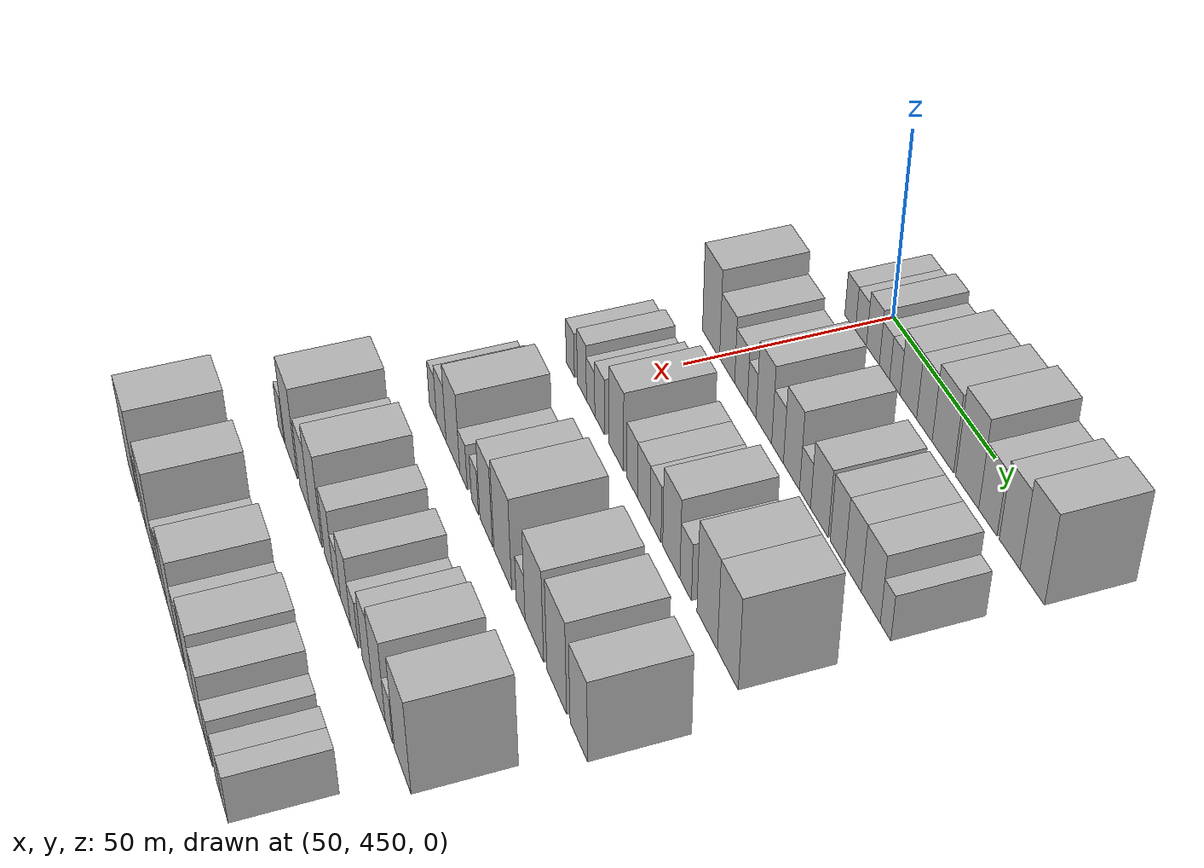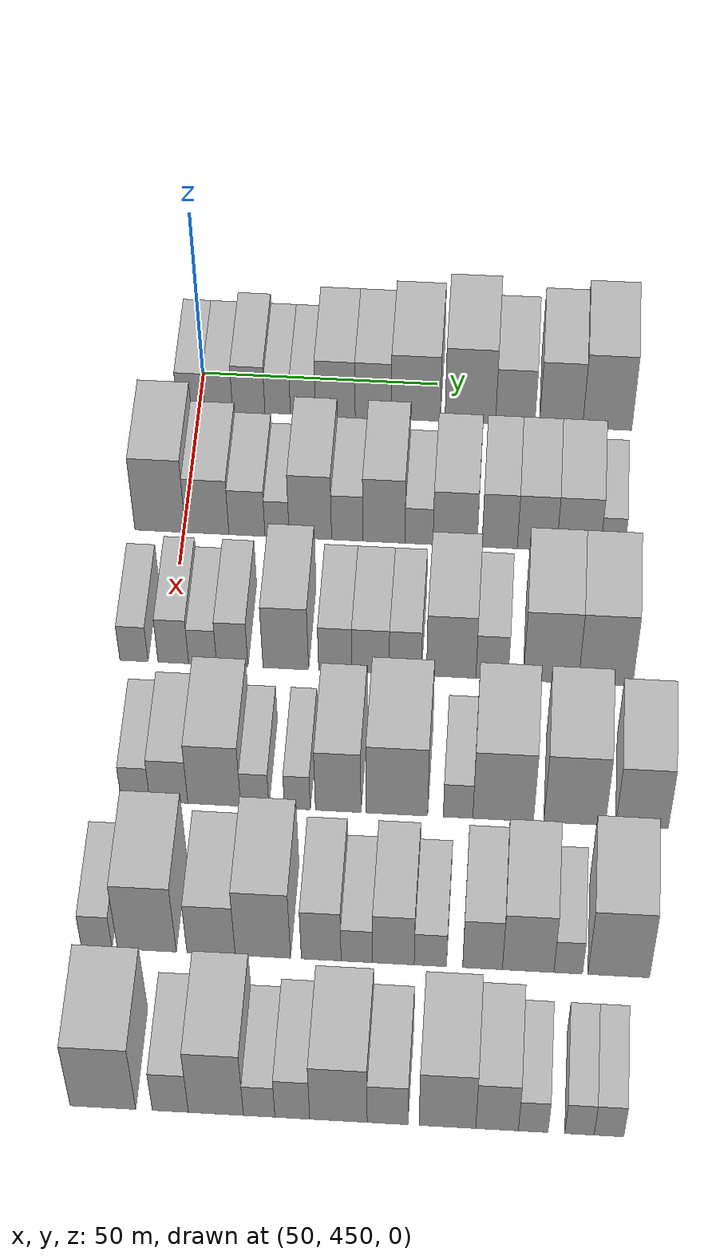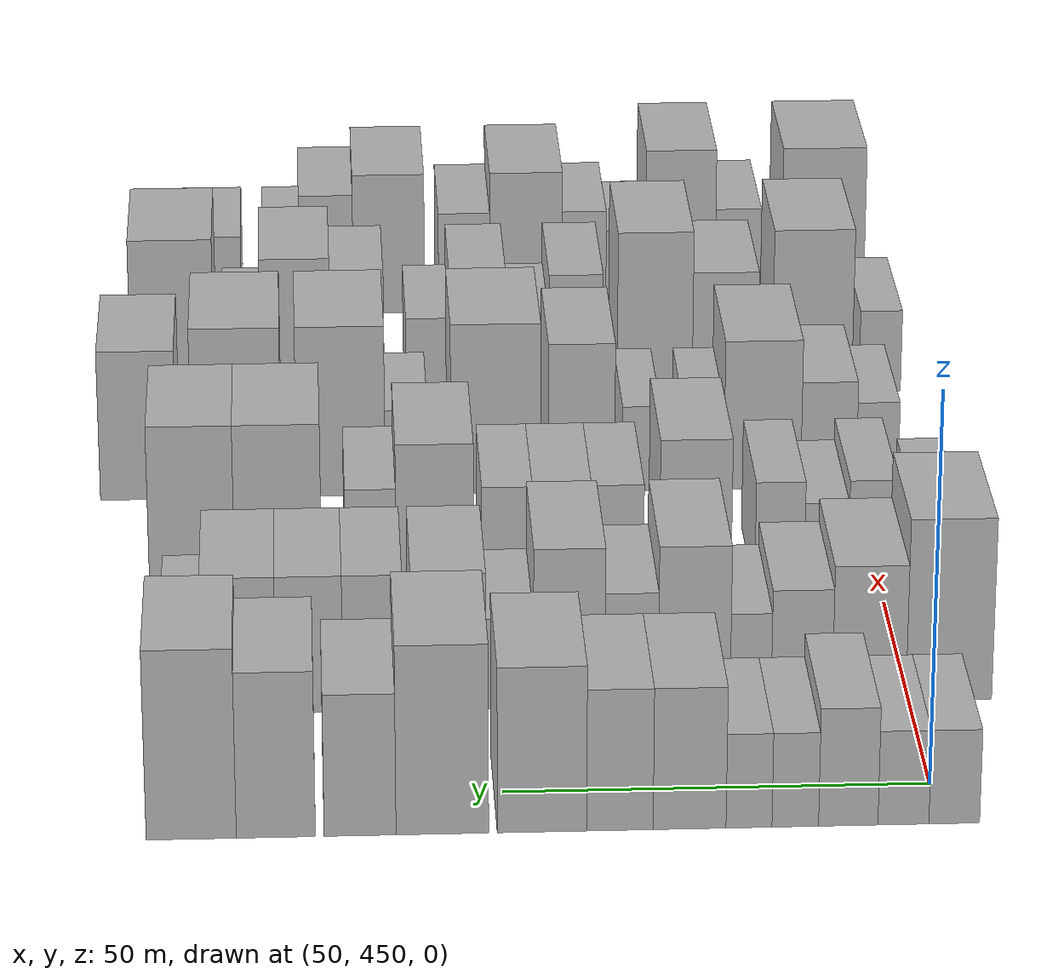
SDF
<sdf version="1.6">
 <world name="default">
  <model name="building_101">
   <static>1</static>
   <pose>50.0000 448.3717 0 0.000000 0.000000 0.000000</pose>
   <link name="link">
    <pose>0 0 6.00 0 0 0</pose>
    <collision name="collision"><geometry><box><size>20.0000 5.8646 12.0000</size></box></geometry></collision>
    <visual name="visual">
     <cast_shadows>0</cast_shadows>
     <geometry><box><size>20.0000 5.8646 12.0000</size></box></geometry>
     <material>
      <script>
       <uri>model://HANNAS_wall/materials/scripts</uri>
       <uri>model://HANNAS_wall/materials/textures</uri>
       <name>vrc/HANNAS_wall</name>
      </script>
     </material>
    </visual>
   </link>
  </model>
  <model name="building_102">
   <static>1</static>
   <pose>50.0000 454.2539 0 0.000000 0.000000 0.000000</pose>
   <link name="link">
    <pose>0 0 6.00 0 0 0</pose>
    <collision name="collision"><geometry><box><size>20.0000 5.8998 12.0000</size></box></geometry></collision>
    <visual name="visual">
     <cast_shadows>0</cast_shadows>
     <geometry><box><size>20.0000 5.8998 12.0000</size></box></geometry>
     <material>
      <script>
       <uri>model://HANNAS_wall/materials/scripts</uri>
       <uri>model://HANNAS_wall/materials/textures</uri>
       <name>vrc/HANNAS_wall</name>
      </script>
     </material>
    </visual>
   </link>
  </model>
  <model name="building_103">
   <static>1</static>
   <pose>50.0000 460.6329 0 0.000000 0.000000 0.000000</pose>
   <link name="link">
    <pose>0 0 7.50 0 0 0</pose>
    <collision name="collision"><geometry><box><size>20.0000 6.8581 15.0000</size></box></geometry></collision>
    <visual name="visual">
     <cast_shadows>0</cast_shadows>
     <geometry><box><size>20.0000 6.8581 15.0000</size></box></geometry>
     <material>
      <script>
       <uri>model://HANNAS_wall/materials/scripts</uri>
       <uri>model://HANNAS_wall/materials/textures</uri>
       <name>vrc/HANNAS_wall</name>
      </script>
     </material>
    </visual>
   </link>
  </model>
  <model name="building_104">
   <static>1</static>
   <pose>50.0000 466.7517 0 0.000000 0.000000 0.000000</pose>
   <link name="link">
    <pose>0 0 6.00 0 0 0</pose>
    <collision name="collision"><geometry><box><size>20.0000 5.3796 12.0000</size></box></geometry></collision>
    <visual name="visual">
     <cast_shadows>0</cast_shadows>
     <geometry><box><size>20.0000 5.3796 12.0000</size></box></geometry>
     <material>
      <script>
       <uri>model://HANNAS_wall/materials/scripts</uri>
       <uri>model://HANNAS_wall/materials/textures</uri>
       <name>vrc/HANNAS_wall</name>
      </script>
     </material>
    </visual>
   </link>
  </model>
  <model name="building_105">
   <static>1</static>
   <pose>50.0000 472.0924 0 0.000000 0.000000 0.000000</pose>
   <link name="link">
    <pose>0 0 6.00 0 0 0</pose>
    <collision name="collision"><geometry><box><size>20.0000 5.3016 12.0000</size></box></geometry></collision>
    <visual name="visual">
     <cast_shadows>0</cast_shadows>
     <geometry><box><size>20.0000 5.3016 12.0000</size></box></geometry>
     <material>
      <script>
       <uri>model://HANNAS_wall/materials/scripts</uri>
       <uri>model://HANNAS_wall/materials/textures</uri>
       <name>vrc/HANNAS_wall</name>
      </script>
     </material>
    </visual>
   </link>
  </model>
  <model name="building_106">
   <static>1</static>
   <pose>50.0000 478.9420 0 0.000000 0.000000 0.000000</pose>
   <link name="link">
    <pose>0 0 9.00 0 0 0</pose>
    <collision name="collision"><geometry><box><size>20.0000 8.3976 18.0000</size></box></geometry></collision>
    <visual name="visual">
     <cast_shadows>0</cast_shadows>
     <geometry><box><size>20.0000 8.3976 18.0000</size></box></geometry>
     <material>
      <script>
       <uri>model://HANNAS_wall/materials/scripts</uri>
       <uri>model://HANNAS_wall/materials/textures</uri>
       <name>vrc/HANNAS_wall</name>
      </script>
     </material>
    </visual>
   </link>
  </model>
  <model name="building_107">
   <static>1</static>
   <pose>50.0000 486.9689 0 0.000000 0.000000 0.000000</pose>
   <link name="link">
    <pose>0 0 9.00 0 0 0</pose>
    <collision name="collision"><geometry><box><size>20.0000 7.6563 18.0000</size></box></geometry></collision>
    <visual name="visual">
     <cast_shadows>0</cast_shadows>
     <geometry><box><size>20.0000 7.6563 18.0000</size></box></geometry>
     <material>
      <script>
       <uri>model://HANNAS_wall/materials/scripts</uri>
       <uri>model://HANNAS_wall/materials/textures</uri>
       <name>vrc/HANNAS_wall</name>
      </script>
     </material>
    </visual>
   </link>
  </model>
  <model name="building_108">
   <static>1</static>
   <pose>50.0000 495.9310 0 0.000000 0.000000 0.000000</pose>
   <link name="link">
    <pose>0 0 10.50 0 0 0</pose>
    <collision name="collision"><geometry><box><size>20.0000 10.2678 21.0000</size></box></geometry></collision>
    <visual name="visual">
     <cast_shadows>0</cast_shadows>
     <geometry><box><size>20.0000 10.2678 21.0000</size></box></geometry>
     <material>
      <script>
       <uri>model://HANNAS_wall/materials/scripts</uri>
       <uri>model://HANNAS_wall/materials/textures</uri>
       <name>vrc/HANNAS_wall</name>
      </script>
     </material>
    </visual>
   </link>
  </model>
  <model name="building_109">
   <static>1</static>
   <pose>50.0000 507.3817 0 0.000000 0.000000 0.000000</pose>
   <link name="link">
    <pose>0 0 12.00 0 0 0</pose>
    <collision name="collision"><geometry><box><size>20.0000 10.6337 24.0000</size></box></geometry></collision>
    <visual name="visual">
     <cast_shadows>0</cast_shadows>
     <geometry><box><size>20.0000 10.6337 24.0000</size></box></geometry>
     <material>
      <script>
       <uri>model://HANNAS_wall/materials/scripts</uri>
       <uri>model://HANNAS_wall/materials/textures</uri>
       <name>vrc/HANNAS_wall</name>
      </script>
     </material>
    </visual>
   </link>
  </model>
  <model name="building_110">
   <static>1</static>
   <pose>50.0000 516.8210 0 0.000000 0.000000 0.000000</pose>
   <link name="link">
    <pose>0 0 9.00 0 0 0</pose>
    <collision name="collision"><geometry><box><size>20.0000 8.2450 18.0000</size></box></geometry></collision>
    <visual name="visual">
     <cast_shadows>0</cast_shadows>
     <geometry><box><size>20.0000 8.2450 18.0000</size></box></geometry>
     <material>
      <script>
       <uri>model://HANNAS_wall/materials/scripts</uri>
       <uri>model://HANNAS_wall/materials/textures</uri>
       <name>vrc/HANNAS_wall</name>
      </script>
     </material>
    </visual>
   </link>
  </model>
  <model name="building_111">
   <static>1</static>
   <pose>50.0000 526.4741 0 0.000000 0.000000 0.000000</pose>
   <link name="link">
    <pose>0 0 10.50 0 0 0</pose>
    <collision name="collision"><geometry><box><size>20.0000 9.0612 21.0000</size></box></geometry></collision>
    <visual name="visual">
     <cast_shadows>0</cast_shadows>
     <geometry><box><size>20.0000 9.0612 21.0000</size></box></geometry>
     <material>
      <script>
       <uri>model://HANNAS_wall/materials/scripts</uri>
       <uri>model://HANNAS_wall/materials/textures</uri>
       <name>vrc/HANNAS_wall</name>
      </script>
     </material>
    </visual>
   </link>
  </model>
  <model name="building_112">
   <static>1</static>
   <pose>50.0000 536.1601 0 0.000000 0.000000 0.000000</pose>
   <link name="link">
    <pose>0 0 12.00 0 0 0</pose>
    <collision name="collision"><geometry><box><size>20.0000 10.3108 24.0000</size></box></geometry></collision>
    <visual name="visual">
     <cast_shadows>0</cast_shadows>
     <geometry><box><size>20.0000 10.3108 24.0000</size></box></geometry>
     <material>
      <script>
       <uri>model://HANNAS_wall/materials/scripts</uri>
       <uri>model://HANNAS_wall/materials/textures</uri>
       <name>vrc/HANNAS_wall</name>
      </script>
     </material>
    </visual>
   </link>
  </model>
  <model name="building_225">
   <static>1</static>
   <pose>82.0000 445.2054 0 0.000000 0.000000 0.000000</pose>
   <link name="link">
    <pose>0 0 12.00 0 0 0</pose>
    <collision name="collision"><geometry><box><size>20.0000 10.4076 24.0000</size></box></geometry></collision>
    <visual name="visual">
     <cast_shadows>0</cast_shadows>
     <geometry><box><size>20.0000 10.4076 24.0000</size></box></geometry>
     <material>
      <script>
       <uri>model://HANNAS_wall/materials/scripts</uri>
       <uri>model://HANNAS_wall/materials/textures</uri>
       <name>vrc/HANNAS_wall</name>
      </script>
     </material>
    </visual>
   </link>
  </model>
  <model name="building_226">
   <static>1</static>
   <pose>82.0000 454.8775 0 0.000000 0.000000 0.000000</pose>
   <link name="link">
    <pose>0 0 9.00 0 0 0</pose>
    <collision name="collision"><geometry><box><size>20.0000 8.9365 18.0000</size></box></geometry></collision>
    <visual name="visual">
     <cast_shadows>0</cast_shadows>
     <geometry><box><size>20.0000 8.9365 18.0000</size></box></geometry>
     <material>
      <script>
       <uri>model://HANNAS_wall/materials/scripts</uri>
       <uri>model://HANNAS_wall/materials/textures</uri>
       <name>vrc/HANNAS_wall</name>
      </script>
     </material>
    </visual>
   </link>
  </model>
  <model name="building_227">
   <static>1</static>
   <pose>82.0000 463.0439 0 0.000000 0.000000 0.000000</pose>
   <link name="link">
    <pose>0 0 7.50 0 0 0</pose>
    <collision name="collision"><geometry><box><size>20.0000 7.3965 15.0000</size></box></geometry></collision>
    <visual name="visual">
     <cast_shadows>0</cast_shadows>
     <geometry><box><size>20.0000 7.3965 15.0000</size></box></geometry>
     <material>
      <script>
       <uri>model://HANNAS_wall/materials/scripts</uri>
       <uri>model://HANNAS_wall/materials/textures</uri>
       <name>vrc/HANNAS_wall</name>
      </script>
     </material>
    </visual>
   </link>
  </model>
  <model name="building_228">
   <static>1</static>
   <pose>82.0000 469.2269 0 0.000000 0.000000 0.000000</pose>
   <link name="link">
    <pose>0 0 6.00 0 0 0</pose>
    <collision name="collision"><geometry><box><size>20.0000 4.9694 12.0000</size></box></geometry></collision>
    <visual name="visual">
     <cast_shadows>0</cast_shadows>
     <geometry><box><size>20.0000 4.9694 12.0000</size></box></geometry>
     <material>
      <script>
       <uri>model://HANNAS_wall/materials/scripts</uri>
       <uri>model://HANNAS_wall/materials/textures</uri>
       <name>vrc/HANNAS_wall</name>
      </script>
     </material>
    </visual>
   </link>
  </model>
  <model name="building_229">
   <static>1</static>
   <pose>82.0000 476.0565 0 0.000000 0.000000 0.000000</pose>
   <link name="link">
    <pose>0 0 10.50 0 0 0</pose>
    <collision name="collision"><geometry><box><size>20.0000 8.6898 21.0000</size></box></geometry></collision>
    <visual name="visual">
     <cast_shadows>0</cast_shadows>
     <geometry><box><size>20.0000 8.6898 21.0000</size></box></geometry>
     <material>
      <script>
       <uri>model://HANNAS_wall/materials/scripts</uri>
       <uri>model://HANNAS_wall/materials/textures</uri>
       <name>vrc/HANNAS_wall</name>
      </script>
     </material>
    </visual>
   </link>
  </model>
  <model name="building_230">
   <static>1</static>
   <pose>82.0000 483.6083 0 0.000000 0.000000 0.000000</pose>
   <link name="link">
    <pose>0 0 7.50 0 0 0</pose>
    <collision name="collision"><geometry><box><size>20.0000 6.4139 15.0000</size></box></geometry></collision>
    <visual name="visual">
     <cast_shadows>0</cast_shadows>
     <geometry><box><size>20.0000 6.4139 15.0000</size></box></geometry>
     <material>
      <script>
       <uri>model://HANNAS_wall/materials/scripts</uri>
       <uri>model://HANNAS_wall/materials/textures</uri>
       <name>vrc/HANNAS_wall</name>
      </script>
     </material>
    </visual>
   </link>
  </model>
  <model name="building_231">
   <static>1</static>
   <pose>82.0000 491.1232 0 0.000000 0.000000 0.000000</pose>
   <link name="link">
    <pose>0 0 10.50 0 0 0</pose>
    <collision name="collision"><geometry><box><size>20.0000 8.6158 21.0000</size></box></geometry></collision>
    <visual name="visual">
     <cast_shadows>0</cast_shadows>
     <geometry><box><size>20.0000 8.6158 21.0000</size></box></geometry>
     <material>
      <script>
       <uri>model://HANNAS_wall/materials/scripts</uri>
       <uri>model://HANNAS_wall/materials/textures</uri>
       <name>vrc/HANNAS_wall</name>
      </script>
     </material>
    </visual>
   </link>
  </model>
  <model name="building_232">
   <static>1</static>
   <pose>82.0000 498.2969 0 0.000000 0.000000 0.000000</pose>
   <link name="link">
    <pose>0 0 6.00 0 0 0</pose>
    <collision name="collision"><geometry><box><size>20.0000 5.7316 12.0000</size></box></geometry></collision>
    <visual name="visual">
     <cast_shadows>0</cast_shadows>
     <geometry><box><size>20.0000 5.7316 12.0000</size></box></geometry>
     <material>
      <script>
       <uri>model://HANNAS_wall/materials/scripts</uri>
       <uri>model://HANNAS_wall/materials/textures</uri>
       <name>vrc/HANNAS_wall</name>
      </script>
     </material>
    </visual>
   </link>
  </model>
  <model name="building_233">
   <static>1</static>
   <pose>82.0000 505.6596 0 0.000000 0.000000 0.000000</pose>
   <link name="link">
    <pose>0 0 9.00 0 0 0</pose>
    <collision name="collision"><geometry><box><size>20.0000 8.9937 18.0000</size></box></geometry></collision>
    <visual name="visual">
     <cast_shadows>0</cast_shadows>
     <geometry><box><size>20.0000 8.9937 18.0000</size></box></geometry>
     <material>
      <script>
       <uri>model://HANNAS_wall/materials/scripts</uri>
       <uri>model://HANNAS_wall/materials/textures</uri>
       <name>vrc/HANNAS_wall</name>
      </script>
     </material>
    </visual>
   </link>
  </model>
  <model name="building_234">
   <static>1</static>
   <pose>82.0000 514.7588 0 0.000000 0.000000 0.000000</pose>
   <link name="link">
    <pose>0 0 9.00 0 0 0</pose>
    <collision name="collision"><geometry><box><size>20.0000 7.2047 18.0000</size></box></geometry></collision>
    <visual name="visual">
     <cast_shadows>0</cast_shadows>
     <geometry><box><size>20.0000 7.2047 18.0000</size></box></geometry>
     <material>
      <script>
       <uri>model://HANNAS_wall/materials/scripts</uri>
       <uri>model://HANNAS_wall/materials/textures</uri>
       <name>vrc/HANNAS_wall</name>
      </script>
     </material>
    </visual>
   </link>
  </model>
  <model name="building_235">
   <static>1</static>
   <pose>82.0000 522.3759 0 0.000000 0.000000 0.000000</pose>
   <link name="link">
    <pose>0 0 9.00 0 0 0</pose>
    <collision name="collision"><geometry><box><size>20.0000 8.0295 18.0000</size></box></geometry></collision>
    <visual name="visual">
     <cast_shadows>0</cast_shadows>
     <geometry><box><size>20.0000 8.0295 18.0000</size></box></geometry>
     <material>
      <script>
       <uri>model://HANNAS_wall/materials/scripts</uri>
       <uri>model://HANNAS_wall/materials/textures</uri>
       <name>vrc/HANNAS_wall</name>
      </script>
     </material>
    </visual>
   </link>
  </model>
  <model name="building_236">
   <static>1</static>
   <pose>82.0000 530.8459 0 0.000000 0.000000 0.000000</pose>
   <link name="link">
    <pose>0 0 9.00 0 0 0</pose>
    <collision name="collision"><geometry><box><size>20.0000 8.9105 18.0000</size></box></geometry></collision>
    <visual name="visual">
     <cast_shadows>0</cast_shadows>
     <geometry><box><size>20.0000 8.9105 18.0000</size></box></geometry>
     <material>
      <script>
       <uri>model://HANNAS_wall/materials/scripts</uri>
       <uri>model://HANNAS_wall/materials/textures</uri>
       <name>vrc/HANNAS_wall</name>
      </script>
     </material>
    </visual>
   </link>
  </model>
  <model name="building_237">
   <static>1</static>
   <pose>82.0000 537.7247 0 0.000000 0.000000 0.000000</pose>
   <link name="link">
    <pose>0 0 6.00 0 0 0</pose>
    <collision name="collision"><geometry><box><size>20.0000 4.8472 12.0000</size></box></geometry></collision>
    <visual name="visual">
     <cast_shadows>0</cast_shadows>
     <geometry><box><size>20.0000 4.8472 12.0000</size></box></geometry>
     <material>
      <script>
       <uri>model://HANNAS_wall/materials/scripts</uri>
       <uri>model://HANNAS_wall/materials/textures</uri>
       <name>vrc/HANNAS_wall</name>
      </script>
     </material>
    </visual>
   </link>
  </model>
  <model name="building_349">
   <static>1</static>
   <pose>114.0000 443.3040 0 0.000000 0.000000 0.000000</pose>
   <link name="link">
    <pose>0 0 6.00 0 0 0</pose>
    <collision name="collision"><geometry><box><size>20.0000 5.6187 12.0000</size></box></geometry></collision>
    <visual name="visual">
     <cast_shadows>0</cast_shadows>
     <geometry><box><size>20.0000 5.6187 12.0000</size></box></geometry>
     <material>
      <script>
       <uri>model://HANNAS_wall/materials/scripts</uri>
       <uri>model://HANNAS_wall/materials/textures</uri>
       <name>vrc/HANNAS_wall</name>
      </script>
     </material>
    </visual>
   </link>
  </model>
  <model name="building_350">
   <static>1</static>
   <pose>114.0000 451.1625 0 0.000000 0.000000 0.000000</pose>
   <link name="link">
    <pose>0 0 7.50 0 0 0</pose>
    <collision name="collision"><geometry><box><size>20.0000 6.0983 15.0000</size></box></geometry></collision>
    <visual name="visual">
     <cast_shadows>0</cast_shadows>
     <geometry><box><size>20.0000 6.0983 15.0000</size></box></geometry>
     <material>
      <script>
       <uri>model://HANNAS_wall/materials/scripts</uri>
       <uri>model://HANNAS_wall/materials/textures</uri>
       <name>vrc/HANNAS_wall</name>
      </script>
     </material>
    </visual>
   </link>
  </model>
  <model name="building_351">
   <static>1</static>
   <pose>114.0000 456.9966 0 0.000000 0.000000 0.000000</pose>
   <link name="link">
    <pose>0 0 6.00 0 0 0</pose>
    <collision name="collision"><geometry><box><size>20.0000 5.5699 12.0000</size></box></geometry></collision>
    <visual name="visual">
     <cast_shadows>0</cast_shadows>
     <geometry><box><size>20.0000 5.5699 12.0000</size></box></geometry>
     <material>
      <script>
       <uri>model://HANNAS_wall/materials/scripts</uri>
       <uri>model://HANNAS_wall/materials/textures</uri>
       <name>vrc/HANNAS_wall</name>
      </script>
     </material>
    </visual>
   </link>
  </model>
  <model name="building_352">
   <static>1</static>
   <pose>114.0000 462.9023 0 0.000000 0.000000 0.000000</pose>
   <link name="link">
    <pose>0 0 7.50 0 0 0</pose>
    <collision name="collision"><geometry><box><size>20.0000 6.2415 15.0000</size></box></geometry></collision>
    <visual name="visual">
     <cast_shadows>0</cast_shadows>
     <geometry><box><size>20.0000 6.2415 15.0000</size></box></geometry>
     <material>
      <script>
       <uri>model://HANNAS_wall/materials/scripts</uri>
       <uri>model://HANNAS_wall/materials/textures</uri>
       <name>vrc/HANNAS_wall</name>
      </script>
     </material>
    </visual>
   </link>
  </model>
  <model name="building_353">
   <static>1</static>
   <pose>114.0000 473.5568 0 0.000000 0.000000 0.000000</pose>
   <link name="link">
    <pose>0 0 10.50 0 0 0</pose>
    <collision name="collision"><geometry><box><size>20.0000 9.0674 21.0000</size></box></geometry></collision>
    <visual name="visual">
     <cast_shadows>0</cast_shadows>
     <geometry><box><size>20.0000 9.0674 21.0000</size></box></geometry>
     <material>
      <script>
       <uri>model://HANNAS_wall/materials/scripts</uri>
       <uri>model://HANNAS_wall/materials/textures</uri>
       <name>vrc/HANNAS_wall</name>
      </script>
     </material>
    </visual>
   </link>
  </model>
  <model name="building_354">
   <static>1</static>
   <pose>114.0000 483.3913 0 0.000000 0.000000 0.000000</pose>
   <link name="link">
    <pose>0 0 7.50 0 0 0</pose>
    <collision name="collision"><geometry><box><size>20.0000 6.6017 15.0000</size></box></geometry></collision>
    <visual name="visual">
     <cast_shadows>0</cast_shadows>
     <geometry><box><size>20.0000 6.6017 15.0000</size></box></geometry>
     <material>
      <script>
       <uri>model://HANNAS_wall/materials/scripts</uri>
       <uri>model://HANNAS_wall/materials/textures</uri>
       <name>vrc/HANNAS_wall</name>
      </script>
     </material>
    </visual>
   </link>
  </model>
  <model name="building_355">
   <static>1</static>
   <pose>114.0000 490.4049 0 0.000000 0.000000 0.000000</pose>
   <link name="link">
    <pose>0 0 7.50 0 0 0</pose>
    <collision name="collision"><geometry><box><size>20.0000 7.4254 15.0000</size></box></geometry></collision>
    <visual name="visual">
     <cast_shadows>0</cast_shadows>
     <geometry><box><size>20.0000 7.4254 15.0000</size></box></geometry>
     <material>
      <script>
       <uri>model://HANNAS_wall/materials/scripts</uri>
       <uri>model://HANNAS_wall/materials/textures</uri>
       <name>vrc/HANNAS_wall</name>
      </script>
     </material>
    </visual>
   </link>
  </model>
  <model name="building_356">
   <static>1</static>
   <pose>114.0000 497.3005 0 0.000000 0.000000 0.000000</pose>
   <link name="link">
    <pose>0 0 7.50 0 0 0</pose>
    <collision name="collision"><geometry><box><size>20.0000 6.3658 15.0000</size></box></geometry></collision>
    <visual name="visual">
     <cast_shadows>0</cast_shadows>
     <geometry><box><size>20.0000 6.3658 15.0000</size></box></geometry>
     <material>
      <script>
       <uri>model://HANNAS_wall/materials/scripts</uri>
       <uri>model://HANNAS_wall/materials/textures</uri>
       <name>vrc/HANNAS_wall</name>
      </script>
     </material>
    </visual>
   </link>
  </model>
  <model name="building_357">
   <static>1</static>
   <pose>114.0000 506.3698 0 0.000000 0.000000 0.000000</pose>
   <link name="link">
    <pose>0 0 10.50 0 0 0</pose>
    <collision name="collision"><geometry><box><size>20.0000 9.7729 21.0000</size></box></geometry></collision>
    <visual name="visual">
     <cast_shadows>0</cast_shadows>
     <geometry><box><size>20.0000 9.7729 21.0000</size></box></geometry>
     <material>
      <script>
       <uri>model://HANNAS_wall/materials/scripts</uri>
       <uri>model://HANNAS_wall/materials/textures</uri>
       <name>vrc/HANNAS_wall</name>
      </script>
     </material>
    </visual>
   </link>
  </model>
  <model name="building_358">
   <static>1</static>
   <pose>114.0000 514.4378 0 0.000000 0.000000 0.000000</pose>
   <link name="link">
    <pose>0 0 7.50 0 0 0</pose>
    <collision name="collision"><geometry><box><size>20.0000 6.3630 15.0000</size></box></geometry></collision>
    <visual name="visual">
     <cast_shadows>0</cast_shadows>
     <geometry><box><size>20.0000 6.3630 15.0000</size></box></geometry>
     <material>
      <script>
       <uri>model://HANNAS_wall/materials/scripts</uri>
       <uri>model://HANNAS_wall/materials/textures</uri>
       <name>vrc/HANNAS_wall</name>
      </script>
     </material>
    </visual>
   </link>
  </model>
  <model name="building_359">
   <static>1</static>
   <pose>114.0000 526.0734 0 0.000000 0.000000 0.000000</pose>
   <link name="link">
    <pose>0 0 12.00 0 0 0</pose>
    <collision name="collision"><geometry><box><size>20.0000 10.9081 24.0000</size></box></geometry></collision>
    <visual name="visual">
     <cast_shadows>0</cast_shadows>
     <geometry><box><size>20.0000 10.9081 24.0000</size></box></geometry>
     <material>
      <script>
       <uri>model://HANNAS_wall/materials/scripts</uri>
       <uri>model://HANNAS_wall/materials/textures</uri>
       <name>vrc/HANNAS_wall</name>
      </script>
     </material>
    </visual>
   </link>
  </model>
  <model name="building_360">
   <static>1</static>
   <pose>114.0000 536.8744 0 0.000000 0.000000 0.000000</pose>
   <link name="link">
    <pose>0 0 12.00 0 0 0</pose>
    <collision name="collision"><geometry><box><size>20.0000 10.6939 24.0000</size></box></geometry></collision>
    <visual name="visual">
     <cast_shadows>0</cast_shadows>
     <geometry><box><size>20.0000 10.6939 24.0000</size></box></geometry>
     <material>
      <script>
       <uri>model://HANNAS_wall/materials/scripts</uri>
       <uri>model://HANNAS_wall/materials/textures</uri>
       <name>vrc/HANNAS_wall</name>
      </script>
     </material>
    </visual>
   </link>
  </model>
  <model name="building_473">
   <static>1</static>
   <pose>146.0000 447.1043 0 0.000000 0.000000 0.000000</pose>
   <link name="link">
    <pose>0 0 6.00 0 0 0</pose>
    <collision name="collision"><geometry><box><size>20.0000 5.5522 12.0000</size></box></geometry></collision>
    <visual name="visual">
     <cast_shadows>0</cast_shadows>
     <geometry><box><size>20.0000 5.5522 12.0000</size></box></geometry>
     <material>
      <script>
       <uri>model://HANNAS_wall/materials/scripts</uri>
       <uri>model://HANNAS_wall/materials/textures</uri>
       <name>vrc/HANNAS_wall</name>
      </script>
     </material>
    </visual>
   </link>
  </model>
  <model name="building_474">
   <static>1</static>
   <pose>146.0000 453.5578 0 0.000000 0.000000 0.000000</pose>
   <link name="link">
    <pose>0 0 7.50 0 0 0</pose>
    <collision name="collision"><geometry><box><size>20.0000 7.3549 15.0000</size></box></geometry></collision>
    <visual name="visual">
     <cast_shadows>0</cast_shadows>
     <geometry><box><size>20.0000 7.3549 15.0000</size></box></geometry>
     <material>
      <script>
       <uri>model://HANNAS_wall/materials/scripts</uri>
       <uri>model://HANNAS_wall/materials/textures</uri>
       <name>vrc/HANNAS_wall</name>
      </script>
     </material>
    </visual>
   </link>
  </model>
  <model name="building_475">
   <static>1</static>
   <pose>146.0000 462.3218 0 0.000000 0.000000 0.000000</pose>
   <link name="link">
    <pose>0 0 10.50 0 0 0</pose>
    <collision name="collision"><geometry><box><size>20.0000 10.1732 21.0000</size></box></geometry></collision>
    <visual name="visual">
     <cast_shadows>0</cast_shadows>
     <geometry><box><size>20.0000 10.1732 21.0000</size></box></geometry>
     <material>
      <script>
       <uri>model://HANNAS_wall/materials/scripts</uri>
       <uri>model://HANNAS_wall/materials/textures</uri>
       <name>vrc/HANNAS_wall</name>
      </script>
     </material>
    </visual>
   </link>
  </model>
  <model name="building_476">
   <static>1</static>
   <pose>146.0000 470.1250 0 0.000000 0.000000 0.000000</pose>
   <link name="link">
    <pose>0 0 6.00 0 0 0</pose>
    <collision name="collision"><geometry><box><size>20.0000 5.4331 12.0000</size></box></geometry></collision>
    <visual name="visual">
     <cast_shadows>0</cast_shadows>
     <geometry><box><size>20.0000 5.4331 12.0000</size></box></geometry>
     <material>
      <script>
       <uri>model://HANNAS_wall/materials/scripts</uri>
       <uri>model://HANNAS_wall/materials/textures</uri>
       <name>vrc/HANNAS_wall</name>
      </script>
     </material>
    </visual>
   </link>
  </model>
  <model name="building_477">
   <static>1</static>
   <pose>146.0000 478.3278 0 0.000000 0.000000 0.000000</pose>
   <link name="link">
    <pose>0 0 6.00 0 0 0</pose>
    <collision name="collision"><geometry><box><size>20.0000 4.9724 12.0000</size></box></geometry></collision>
    <visual name="visual">
     <cast_shadows>0</cast_shadows>
     <geometry><box><size>20.0000 4.9724 12.0000</size></box></geometry>
     <material>
      <script>
       <uri>model://HANNAS_wall/materials/scripts</uri>
       <uri>model://HANNAS_wall/materials/textures</uri>
       <name>vrc/HANNAS_wall</name>
      </script>
     </material>
    </visual>
   </link>
  </model>
  <model name="building_478">
   <static>1</static>
   <pose>146.0000 486.1880 0 0.000000 0.000000 0.000000</pose>
   <link name="link">
    <pose>0 0 10.50 0 0 0</pose>
    <collision name="collision"><geometry><box><size>20.0000 8.7480 21.0000</size></box></geometry></collision>
    <visual name="visual">
     <cast_shadows>0</cast_shadows>
     <geometry><box><size>20.0000 8.7480 21.0000</size></box></geometry>
     <material>
      <script>
       <uri>model://HANNAS_wall/materials/scripts</uri>
       <uri>model://HANNAS_wall/materials/textures</uri>
       <name>vrc/HANNAS_wall</name>
      </script>
     </material>
    </visual>
   </link>
  </model>
  <model name="building_479">
   <static>1</static>
   <pose>146.0000 497.4629 0 0.000000 0.000000 0.000000</pose>
   <link name="link">
    <pose>0 0 12.00 0 0 0</pose>
    <collision name="collision"><geometry><box><size>20.0000 11.8019 24.0000</size></box></geometry></collision>
    <visual name="visual">
     <cast_shadows>0</cast_shadows>
     <geometry><box><size>20.0000 11.8019 24.0000</size></box></geometry>
     <material>
      <script>
       <uri>model://HANNAS_wall/materials/scripts</uri>
       <uri>model://HANNAS_wall/materials/textures</uri>
       <name>vrc/HANNAS_wall</name>
      </script>
     </material>
    </visual>
   </link>
  </model>
  <model name="building_480">
   <static>1</static>
   <pose>146.0000 509.1903 0 0.000000 0.000000 0.000000</pose>
   <link name="link">
    <pose>0 0 6.00 0 0 0</pose>
    <collision name="collision"><geometry><box><size>20.0000 5.6528 12.0000</size></box></geometry></collision>
    <visual name="visual">
     <cast_shadows>0</cast_shadows>
     <geometry><box><size>20.0000 5.6528 12.0000</size></box></geometry>
     <material>
      <script>
       <uri>model://HANNAS_wall/materials/scripts</uri>
       <uri>model://HANNAS_wall/materials/textures</uri>
       <name>vrc/HANNAS_wall</name>
      </script>
     </material>
    </visual>
   </link>
  </model>
  <model name="building_481">
   <static>1</static>
   <pose>146.0000 517.8215 0 0.000000 0.000000 0.000000</pose>
   <link name="link">
    <pose>0 0 12.00 0 0 0</pose>
    <collision name="collision"><geometry><box><size>20.0000 11.6098 24.0000</size></box></geometry></collision>
    <visual name="visual">
     <cast_shadows>0</cast_shadows>
     <geometry><box><size>20.0000 11.6098 24.0000</size></box></geometry>
     <material>
      <script>
       <uri>model://HANNAS_wall/materials/scripts</uri>
       <uri>model://HANNAS_wall/materials/textures</uri>
       <name>vrc/HANNAS_wall</name>
      </script>
     </material>
    </visual>
   </link>
  </model>
  <model name="building_482">
   <static>1</static>
   <pose>146.0000 531.4985 0 0.000000 0.000000 0.000000</pose>
   <link name="link">
    <pose>0 0 12.00 0 0 0</pose>
    <collision name="collision"><geometry><box><size>20.0000 11.7441 24.0000</size></box></geometry></collision>
    <visual name="visual">
     <cast_shadows>0</cast_shadows>
     <geometry><box><size>20.0000 11.7441 24.0000</size></box></geometry>
     <material>
      <script>
       <uri>model://HANNAS_wall/materials/scripts</uri>
       <uri>model://HANNAS_wall/materials/textures</uri>
       <name>vrc/HANNAS_wall</name>
      </script>
     </material>
    </visual>
   </link>
  </model>
  <model name="building_483">
   <static>1</static>
   <pose>146.0000 544.3834 0 0.000000 0.000000 0.000000</pose>
   <link name="link">
    <pose>0 0 10.50 0 0 0</pose>
    <collision name="collision"><geometry><box><size>20.0000 10.0257 21.0000</size></box></geometry></collision>
    <visual name="visual">
     <cast_shadows>0</cast_shadows>
     <geometry><box><size>20.0000 10.0257 21.0000</size></box></geometry>
     <material>
      <script>
       <uri>model://HANNAS_wall/materials/scripts</uri>
       <uri>model://HANNAS_wall/materials/textures</uri>
       <name>vrc/HANNAS_wall</name>
      </script>
     </material>
    </visual>
   </link>
  </model>
  <model name="building_592">
   <static>1</static>
   <pose>178.0000 443.3426 0 0.000000 0.000000 0.000000</pose>
   <link name="link">
    <pose>0 0 6.00 0 0 0</pose>
    <collision name="collision"><geometry><box><size>20.0000 5.7309 12.0000</size></box></geometry></collision>
    <visual name="visual">
     <cast_shadows>0</cast_shadows>
     <geometry><box><size>20.0000 5.7309 12.0000</size></box></geometry>
     <material>
      <script>
       <uri>model://HANNAS_wall/materials/scripts</uri>
       <uri>model://HANNAS_wall/materials/textures</uri>
       <name>vrc/HANNAS_wall</name>
      </script>
     </material>
    </visual>
   </link>
  </model>
  <model name="building_593">
   <static>1</static>
   <pose>178.0000 452.7116 0 0.000000 0.000000 0.000000</pose>
   <link name="link">
    <pose>0 0 12.00 0 0 0</pose>
    <collision name="collision"><geometry><box><size>20.0000 11.0069 24.0000</size></box></geometry></collision>
    <visual name="visual">
     <cast_shadows>0</cast_shadows>
     <geometry><box><size>20.0000 11.0069 24.0000</size></box></geometry>
     <material>
      <script>
       <uri>model://HANNAS_wall/materials/scripts</uri>
       <uri>model://HANNAS_wall/materials/textures</uri>
       <name>vrc/HANNAS_wall</name>
      </script>
     </material>
    </visual>
   </link>
  </model>
  <model name="building_594">
   <static>1</static>
   <pose>178.0000 464.7129 0 0.000000 0.000000 0.000000</pose>
   <link name="link">
    <pose>0 0 9.00 0 0 0</pose>
    <collision name="collision"><geometry><box><size>20.0000 8.9957 18.0000</size></box></geometry></collision>
    <visual name="visual">
     <cast_shadows>0</cast_shadows>
     <geometry><box><size>20.0000 8.9957 18.0000</size></box></geometry>
     <material>
      <script>
       <uri>model://HANNAS_wall/materials/scripts</uri>
       <uri>model://HANNAS_wall/materials/textures</uri>
       <name>vrc/HANNAS_wall</name>
      </script>
     </material>
    </visual>
   </link>
  </model>
  <model name="building_595">
   <static>1</static>
   <pose>178.0000 474.3723 0 0.000000 0.000000 0.000000</pose>
   <link name="link">
    <pose>0 0 12.00 0 0 0</pose>
    <collision name="collision"><geometry><box><size>20.0000 10.3231 24.0000</size></box></geometry></collision>
    <visual name="visual">
     <cast_shadows>0</cast_shadows>
     <geometry><box><size>20.0000 10.3231 24.0000</size></box></geometry>
     <material>
      <script>
       <uri>model://HANNAS_wall/materials/scripts</uri>
       <uri>model://HANNAS_wall/materials/textures</uri>
       <name>vrc/HANNAS_wall</name>
      </script>
     </material>
    </visual>
   </link>
  </model>
  <model name="building_596">
   <static>1</static>
   <pose>178.0000 485.2303 0 0.000000 0.000000 0.000000</pose>
   <link name="link">
    <pose>0 0 9.00 0 0 0</pose>
    <collision name="collision"><geometry><box><size>20.0000 7.3930 18.0000</size></box></geometry></collision>
    <visual name="visual">
     <cast_shadows>0</cast_shadows>
     <geometry><box><size>20.0000 7.3930 18.0000</size></box></geometry>
     <material>
      <script>
       <uri>model://HANNAS_wall/materials/scripts</uri>
       <uri>model://HANNAS_wall/materials/textures</uri>
       <name>vrc/HANNAS_wall</name>
      </script>
     </material>
    </visual>
   </link>
  </model>
  <model name="building_597">
   <static>1</static>
   <pose>178.0000 491.8499 0 0.000000 0.000000 0.000000</pose>
   <link name="link">
    <pose>0 0 6.00 0 0 0</pose>
    <collision name="collision"><geometry><box><size>20.0000 5.8462 12.0000</size></box></geometry></collision>
    <visual name="visual">
     <cast_shadows>0</cast_shadows>
     <geometry><box><size>20.0000 5.8462 12.0000</size></box></geometry>
     <material>
      <script>
       <uri>model://HANNAS_wall/materials/scripts</uri>
       <uri>model://HANNAS_wall/materials/textures</uri>
       <name>vrc/HANNAS_wall</name>
      </script>
     </material>
    </visual>
   </link>
  </model>
  <model name="building_598">
   <static>1</static>
   <pose>178.0000 498.6419 0 0.000000 0.000000 0.000000</pose>
   <link name="link">
    <pose>0 0 9.00 0 0 0</pose>
    <collision name="collision"><geometry><box><size>20.0000 7.7377 18.0000</size></box></geometry></collision>
    <visual name="visual">
     <cast_shadows>0</cast_shadows>
     <geometry><box><size>20.0000 7.7377 18.0000</size></box></geometry>
     <material>
      <script>
       <uri>model://HANNAS_wall/materials/scripts</uri>
       <uri>model://HANNAS_wall/materials/textures</uri>
       <name>vrc/HANNAS_wall</name>
      </script>
     </material>
    </visual>
   </link>
  </model>
  <model name="building_599">
   <static>1</static>
   <pose>178.0000 505.5030 0 0.000000 0.000000 0.000000</pose>
   <link name="link">
    <pose>0 0 6.00 0 0 0</pose>
    <collision name="collision"><geometry><box><size>20.0000 5.9845 12.0000</size></box></geometry></collision>
    <visual name="visual">
     <cast_shadows>0</cast_shadows>
     <geometry><box><size>20.0000 5.9845 12.0000</size></box></geometry>
     <material>
      <script>
       <uri>model://HANNAS_wall/materials/scripts</uri>
       <uri>model://HANNAS_wall/materials/textures</uri>
       <name>vrc/HANNAS_wall</name>
      </script>
     </material>
    </visual>
   </link>
  </model>
  <model name="building_600">
   <static>1</static>
   <pose>178.0000 515.1723 0 0.000000 0.000000 0.000000</pose>
   <link name="link">
    <pose>0 0 9.00 0 0 0</pose>
    <collision name="collision"><geometry><box><size>20.0000 7.3542 18.0000</size></box></geometry></collision>
    <visual name="visual">
     <cast_shadows>0</cast_shadows>
     <geometry><box><size>20.0000 7.3542 18.0000</size></box></geometry>
     <material>
      <script>
       <uri>model://HANNAS_wall/materials/scripts</uri>
       <uri>model://HANNAS_wall/materials/textures</uri>
       <name>vrc/HANNAS_wall</name>
      </script>
     </material>
    </visual>
   </link>
  </model>
  <model name="building_601">
   <static>1</static>
   <pose>178.0000 523.6196 0 0.000000 0.000000 0.000000</pose>
   <link name="link">
    <pose>0 0 10.50 0 0 0</pose>
    <collision name="collision"><geometry><box><size>20.0000 9.5402 21.0000</size></box></geometry></collision>
    <visual name="visual">
     <cast_shadows>0</cast_shadows>
     <geometry><box><size>20.0000 9.5402 21.0000</size></box></geometry>
     <material>
      <script>
       <uri>model://HANNAS_wall/materials/scripts</uri>
       <uri>model://HANNAS_wall/materials/textures</uri>
       <name>vrc/HANNAS_wall</name>
      </script>
     </material>
    </visual>
   </link>
  </model>
  <model name="building_602">
   <static>1</static>
   <pose>178.0000 531.0444 0 0.000000 0.000000 0.000000</pose>
   <link name="link">
    <pose>0 0 6.00 0 0 0</pose>
    <collision name="collision"><geometry><box><size>20.0000 5.3094 12.0000</size></box></geometry></collision>
    <visual name="visual">
     <cast_shadows>0</cast_shadows>
     <geometry><box><size>20.0000 5.3094 12.0000</size></box></geometry>
     <material>
      <script>
       <uri>model://HANNAS_wall/materials/scripts</uri>
       <uri>model://HANNAS_wall/materials/textures</uri>
       <name>vrc/HANNAS_wall</name>
      </script>
     </material>
    </visual>
   </link>
  </model>
  <model name="building_603">
   <static>1</static>
   <pose>178.0000 540.3887 0 0.000000 0.000000 0.000000</pose>
   <link name="link">
    <pose>0 0 12.00 0 0 0</pose>
    <collision name="collision"><geometry><box><size>20.0000 11.3791 24.0000</size></box></geometry></collision>
    <visual name="visual">
     <cast_shadows>0</cast_shadows>
     <geometry><box><size>20.0000 11.3791 24.0000</size></box></geometry>
     <material>
      <script>
       <uri>model://HANNAS_wall/materials/scripts</uri>
       <uri>model://HANNAS_wall/materials/textures</uri>
       <name>vrc/HANNAS_wall</name>
      </script>
     </material>
    </visual>
   </link>
  </model>
  <model name="building_712">
   <static>1</static>
   <pose>210.0000 448.2074 0 0.000000 0.000000 0.000000</pose>
   <link name="link">
    <pose>0 0 12.00 0 0 0</pose>
    <collision name="collision"><geometry><box><size>20.0000 11.8373 24.0000</size></box></geometry></collision>
    <visual name="visual">
     <cast_shadows>0</cast_shadows>
     <geometry><box><size>20.0000 11.8373 24.0000</size></box></geometry>
     <material>
      <script>
       <uri>model://HANNAS_wall/materials/scripts</uri>
       <uri>model://HANNAS_wall/materials/textures</uri>
       <name>vrc/HANNAS_wall</name>
      </script>
     </material>
    </visual>
   </link>
  </model>
  <model name="building_713">
   <static>1</static>
   <pose>210.0000 460.3786 0 0.000000 0.000000 0.000000</pose>
   <link name="link">
    <pose>0 0 7.50 0 0 0</pose>
    <collision name="collision"><geometry><box><size>20.0000 6.5051 15.0000</size></box></geometry></collision>
    <visual name="visual">
     <cast_shadows>0</cast_shadows>
     <geometry><box><size>20.0000 6.5051 15.0000</size></box></geometry>
     <material>
      <script>
       <uri>model://HANNAS_wall/materials/scripts</uri>
       <uri>model://HANNAS_wall/materials/textures</uri>
       <name>vrc/HANNAS_wall</name>
      </script>
     </material>
    </visual>
   </link>
  </model>
  <model name="building_714">
   <static>1</static>
   <pose>210.0000 468.5937 0 0.000000 0.000000 0.000000</pose>
   <link name="link">
    <pose>0 0 12.00 0 0 0</pose>
    <collision name="collision"><geometry><box><size>20.0000 9.9251 24.0000</size></box></geometry></collision>
    <visual name="visual">
     <cast_shadows>0</cast_shadows>
     <geometry><box><size>20.0000 9.9251 24.0000</size></box></geometry>
     <material>
      <script>
       <uri>model://HANNAS_wall/materials/scripts</uri>
       <uri>model://HANNAS_wall/materials/textures</uri>
       <name>vrc/HANNAS_wall</name>
      </script>
     </material>
    </visual>
   </link>
  </model>
  <model name="building_715">
   <static>1</static>
   <pose>210.0000 476.3895 0 0.000000 0.000000 0.000000</pose>
   <link name="link">
    <pose>0 0 6.00 0 0 0</pose>
    <collision name="collision"><geometry><box><size>20.0000 5.6665 12.0000</size></box></geometry></collision>
    <visual name="visual">
     <cast_shadows>0</cast_shadows>
     <geometry><box><size>20.0000 5.6665 12.0000</size></box></geometry>
     <material>
      <script>
       <uri>model://HANNAS_wall/materials/scripts</uri>
       <uri>model://HANNAS_wall/materials/textures</uri>
       <name>vrc/HANNAS_wall</name>
      </script>
     </material>
    </visual>
   </link>
  </model>
  <model name="building_716">
   <static>1</static>
   <pose>210.0000 482.3479 0 0.000000 0.000000 0.000000</pose>
   <link name="link">
    <pose>0 0 7.50 0 0 0</pose>
    <collision name="collision"><geometry><box><size>20.0000 6.2503 15.0000</size></box></geometry></collision>
    <visual name="visual">
     <cast_shadows>0</cast_shadows>
     <geometry><box><size>20.0000 6.2503 15.0000</size></box></geometry>
     <material>
      <script>
       <uri>model://HANNAS_wall/materials/scripts</uri>
       <uri>model://HANNAS_wall/materials/textures</uri>
       <name>vrc/HANNAS_wall</name>
      </script>
     </material>
    </visual>
   </link>
  </model>
  <model name="building_717">
   <static>1</static>
   <pose>210.0000 490.6398 0 0.000000 0.000000 0.000000</pose>
   <link name="link">
    <pose>0 0 10.50 0 0 0</pose>
    <collision name="collision"><geometry><box><size>20.0000 10.3334 21.0000</size></box></geometry></collision>
    <visual name="visual">
     <cast_shadows>0</cast_shadows>
     <geometry><box><size>20.0000 10.3334 21.0000</size></box></geometry>
     <material>
      <script>
       <uri>model://HANNAS_wall/materials/scripts</uri>
       <uri>model://HANNAS_wall/materials/textures</uri>
       <name>vrc/HANNAS_wall</name>
      </script>
     </material>
    </visual>
   </link>
  </model>
  <model name="building_718">
   <static>1</static>
   <pose>210.0000 499.4612 0 0.000000 0.000000 0.000000</pose>
   <link name="link">
    <pose>0 0 7.50 0 0 0</pose>
    <collision name="collision"><geometry><box><size>20.0000 7.3094 15.0000</size></box></geometry></collision>
    <visual name="visual">
     <cast_shadows>0</cast_shadows>
     <geometry><box><size>20.0000 7.3094 15.0000</size></box></geometry>
     <material>
      <script>
       <uri>model://HANNAS_wall/materials/scripts</uri>
       <uri>model://HANNAS_wall/materials/textures</uri>
       <name>vrc/HANNAS_wall</name>
      </script>
     </material>
    </visual>
   </link>
  </model>
  <model name="building_719">
   <static>1</static>
   <pose>210.0000 510.1926 0 0.000000 0.000000 0.000000</pose>
   <link name="link">
    <pose>0 0 10.50 0 0 0</pose>
    <collision name="collision"><geometry><box><size>20.0000 10.1535 21.0000</size></box></geometry></collision>
    <visual name="visual">
     <cast_shadows>0</cast_shadows>
     <geometry><box><size>20.0000 10.1535 21.0000</size></box></geometry>
     <material>
      <script>
       <uri>model://HANNAS_wall/materials/scripts</uri>
       <uri>model://HANNAS_wall/materials/textures</uri>
       <name>vrc/HANNAS_wall</name>
      </script>
     </material>
    </visual>
   </link>
  </model>
  <model name="building_720">
   <static>1</static>
   <pose>210.0000 519.0826 0 0.000000 0.000000 0.000000</pose>
   <link name="link">
    <pose>0 0 9.00 0 0 0</pose>
    <collision name="collision"><geometry><box><size>20.0000 7.6266 18.0000</size></box></geometry></collision>
    <visual name="visual">
     <cast_shadows>0</cast_shadows>
     <geometry><box><size>20.0000 7.6266 18.0000</size></box></geometry>
     <material>
      <script>
       <uri>model://HANNAS_wall/materials/scripts</uri>
       <uri>model://HANNAS_wall/materials/textures</uri>
       <name>vrc/HANNAS_wall</name>
      </script>
     </material>
    </visual>
   </link>
  </model>
  <model name="building_721">
   <static>1</static>
   <pose>210.0000 525.5516 0 0.000000 0.000000 0.000000</pose>
   <link name="link">
    <pose>0 0 6.00 0 0 0</pose>
    <collision name="collision"><geometry><box><size>20.0000 5.3113 12.0000</size></box></geometry></collision>
    <visual name="visual">
     <cast_shadows>0</cast_shadows>
     <geometry><box><size>20.0000 5.3113 12.0000</size></box></geometry>
     <material>
      <script>
       <uri>model://HANNAS_wall/materials/scripts</uri>
       <uri>model://HANNAS_wall/materials/textures</uri>
       <name>vrc/HANNAS_wall</name>
      </script>
     </material>
    </visual>
   </link>
  </model>
  <model name="building_722">
   <static>1</static>
   <pose>210.0000 533.8361 0 0.000000 0.000000 0.000000</pose>
   <link name="link">
    <pose>0 0 6.00 0 0 0</pose>
    <collision name="collision"><geometry><box><size>20.0000 5.2577 12.0000</size></box></geometry></collision>
    <visual name="visual">
     <cast_shadows>0</cast_shadows>
     <geometry><box><size>20.0000 5.2577 12.0000</size></box></geometry>
     <material>
      <script>
       <uri>model://HANNAS_wall/materials/scripts</uri>
       <uri>model://HANNAS_wall/materials/textures</uri>
       <name>vrc/HANNAS_wall</name>
      </script>
     </material>
    </visual>
   </link>
  </model>
  <model name="building_723">
   <static>1</static>
   <pose>210.0000 539.1078 0 0.000000 0.000000 0.000000</pose>
   <link name="link">
    <pose>0 0 6.00 0 0 0</pose>
    <collision name="collision"><geometry><box><size>20.0000 5.2856 12.0000</size></box></geometry></collision>
    <visual name="visual">
     <cast_shadows>0</cast_shadows>
     <geometry><box><size>20.0000 5.2856 12.0000</size></box></geometry>
     <material>
      <script>
       <uri>model://HANNAS_wall/materials/scripts</uri>
       <uri>model://HANNAS_wall/materials/textures</uri>
       <name>vrc/HANNAS_wall</name>
      </script>
     </material>
    </visual>
   </link>
  </model>
 </world>
</sdf>
